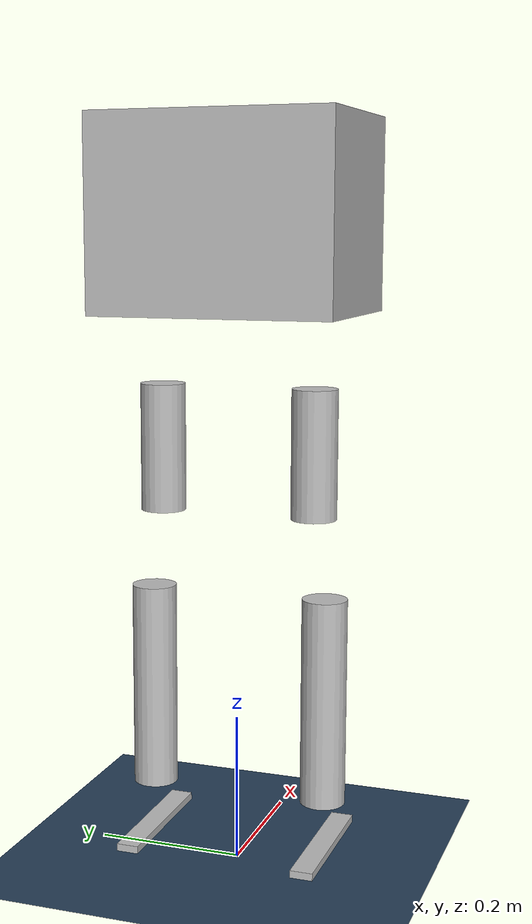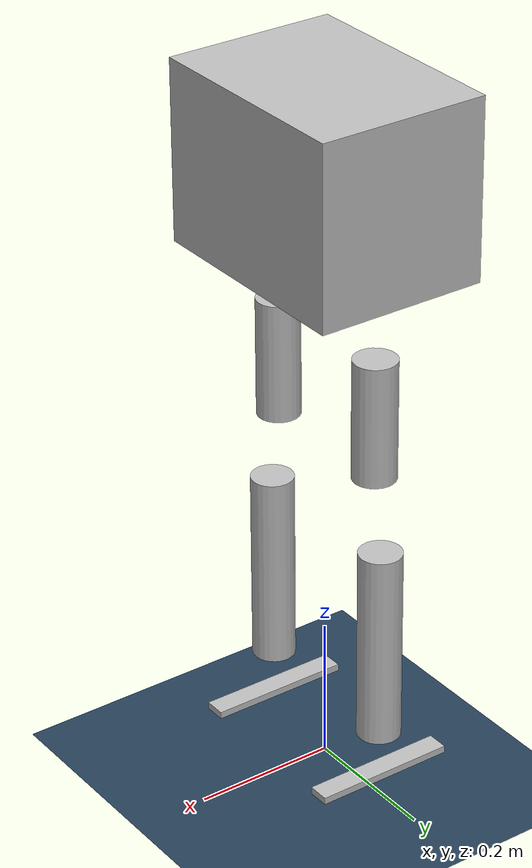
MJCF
<mujoco model="mini_owheel_learning">
  <compiler angle="radian" autolimits="true" />

  <asset>
    <!--设置地板-->
    <texture name="grid" type="2d" builtin="checker" width="512" height="512" rgb1=".1 .2 .3"
      rgb2=".2 .3 .4" />
    <material name="grid" texture="grid" texrepeat="1 1" texuniform="true" reflectance=".2" />
  </asset>

  <option timestep="0.005" integrator="RK4">
    <flag sensornoise="enable" />
  </option>

  <visual>
    <map force="0.1" zfar="30" />
    <rgba haze="0.15 0.25 0.35 1" />
    <global offwidth="2560" offheight="1440" elevation="-20" azimuth="120" />
  </visual>

  <statistic meansize="0.166499" extent="1.17243" center="0 0.000784361 -0.300364" />
  <worldbody>
    <!--主光源（头顶）-->
    <light name="main_light" diffuse="2 2 2" specular="0.5 0.5 0.5" pos="0 0 40" dir="0 0 -1"
      castshadow="true" />
    <!--辅助光源,四面八方-->
    <light name="aux_light1" diffuse=".8 .8 .8" pos=" 10 0 1" dir="-1 0 0" castshadow="false" />
    <light name="aux_light2" diffuse=".8 .8 .8" pos="-10 0 1" dir=" 1 0 0" castshadow="false" />
    <light name="aux_light3" diffuse=".8 .8 .8" pos="0  10 1" dir="0 -1 0" castshadow="false" />
    <light name="aux_light4" diffuse=".8 .8 .8" pos="0 -10 1" dir="0  1 0" castshadow="false" />
    <!--地板-->
    <geom name="floor" type="plane" size="0 0 0.05" material="grid" />
    <body name="torso" pos="0 0 0.82" euler="0 0 3.14">
      <inertial pos="0.01278331 -0.00050323 0.04958380" mass="14.481360"
        fullinertia="0.172446 0.146211 0.128072 -0.000378 0.030596 0.001862" />
      <freejoint name="torso" />
      <geom size="0.12 0.16 0.125" pos="0 0 0.05" type="box" rgba="0.752941 0.752941 0.752941 1" />
      <!--增加IMU所在位置-->
      <site name="imu_site" pos="0 0 0" size="0.02" rgba="1 0 0 1" type="sphere" />
      <body name="lhip" pos="-0.0694983 0.0850001 -0.103336">
        <inertial pos="0.069765 -0.005664 -4e-05" quat="0.506314 0.486654 0.492399 0.514157"
          mass="1.41138" diaginertia="0.000793082 0.00068858 0.000350338" />
        <joint name="lhiproll" pos="0 0 0" axis="1 0 0" range="-0.5 0.5" />
        <body name="lfem" pos="0.0705 0.019725 0">
          <inertial pos="2.9e-05 0.039864 -0.053092" quat="0.997185 0.0702586 -0.00189156 0.0261344"
            mass="1.94987" diaginertia="0.0193461 0.0193218 0.000969153" />
          <joint name="lfempitch" pos="0 0 0" axis="0 -1 0" range="-1.05 1.05" />
          <geom size="0.03 0.085" pos="0 0 -0.15" type="cylinder"
            rgba="0.752941 0.752941 0.752941 1" />
          <body name="ltib" pos="0 0.0162685 -0.3">
            <inertial pos="0.000378 0.004765 -0.218009" quat="0.666459 -0.0145818 0.0101508 0.74533"
              mass="1.48393" diaginertia="0.0148939 0.0148302 0.000594952" />
            <joint name="ltibpitch" pos="0 0 0" axis="0 -1 0" range="-1.57 0" />
            <geom size="0.03 0.14" pos="0 0 -0.18" type="cylinder"
              rgba="0.752941 0.752941 0.752941 1" />
            <body name="lfoot" pos="0 0.03115 -0.3">
              <inertial pos="-0.00017 -0.022829 -0.054307"
                quat="0.437705 0.555194 0.436653 0.556335" mass="0.393722"
                diaginertia="0.0012156 0.000988402 0.000539998" />
              <joint name="lfootrot" pos="0 0 0" axis="0 1 0" range="-1.57 1.57" />
              <geom size="0.1 0.015 0.005" pos="0 -0.03 -0.082" type="box"
                rgba="0.752941 0.752941 0.752941 1" />
            </body>
          </body>
        </body>
      </body>
      <body name="rhip" pos="-0.0694983 -0.0849999 -0.103336">
        <inertial pos="0.069787 0.005664 -2e-06" quat="0.492399 0.514157 0.506314 0.486654"
          mass="1.41138" diaginertia="0.000793082 0.00068858 0.000350338" />
        <joint name="rhiproll" pos="0 0 0" axis="1 0 0" range="-0.5 0.5" />
        <body name="rfem" pos="0.0705 -0.019725 0">
          <inertial pos="0 -0.039784 -0.053142" quat="0.997491 -0.0707435 -0.000207624 -0.00254665"
            mass="1.94987" diaginertia="0.019343 0.0193154 0.000971618" />
          <joint name="rfempitch" pos="0 0 0" axis="0 -1 0" range="-1.05 1.05" />
          <geom size="0.03 0.085" pos="0 0 -0.15" type="cylinder"
            rgba="0.752941 0.752941 0.752941 1" />
          <body name="rtib" pos="0 -0.0147 -0.3">
            <inertial pos="0.000328 -0.004765 -0.218009"
              quat="0.746449 0.0100612 -0.0147449 0.665203" mass="1.48393"
              diaginertia="0.014894 0.0148302 0.000594782" />
            <joint name="rtibpitch" pos="0 0 0" axis="0 -1 0" range="-1.57 0" />
            <geom size="0.03 0.14" pos="0 0 -0.18" type="cylinder"
              rgba="0.752941 0.752941 0.752941 1" />
            <body name="rfoot" pos="0 -0.03115 -0.3">
              <inertial pos="4.8e-05 0.022829 -0.054307" quat="0.553748 0.439757 0.557769 0.434593"
                mass="0.393722" diaginertia="0.0012156 0.000988438 0.000542962" />
              <joint name="rfootrot" pos="0 0 0" axis="0 1 0" range="-1.57 1.57" />
              <geom size="0.1 0.015 0.005" pos="0 0.03 -0.082" type="box"
                rgba="0.752941 0.752941 0.752941 1" />
            </body>
          </body>
        </body>
      </body>
    </body>
  </worldbody>

  <actuator>
    <motor name="lhiproll" joint="lhiproll" gear="1" ctrllimited="true" ctrlrange="-100 100" />
    <motor name="lfempitch" joint="lfempitch" gear="1" ctrllimited="true" ctrlrange="-100 100" />
    <motor name="ltibpitch" joint="ltibpitch" gear="1" ctrllimited="true" ctrlrange="-100 100" />
    <motor name="lfootrot" joint="lfootrot" gear="1" ctrllimited="true" ctrlrange="-100 100" />
    <motor name="rhiproll" joint="rhiproll" gear="1" ctrllimited="true" ctrlrange="-100 100" />
    <motor name="rfempitch" joint="rfempitch" gear="1" ctrllimited="true" ctrlrange="-100 100" />
    <motor name="rtibpitch" joint="rtibpitch" gear="1" ctrllimited="true" ctrlrange="-100 100" />
    <motor name="rfootrot" joint="rfootrot" gear="1" ctrllimited="true" ctrlrange="-100 100" />
  </actuator>

  <sensor>
    <!--组合IMU-->
    <accelerometer name="imu_acc" site="imu_site" />
    <gyro name="imu_gyro" site="imu_site" />
    <framepos name="imu_pos" objtype="site" objname="imu_site" />
    <framelinvel name="imu_linvel" objtype="site" objname="imu_site" />
  </sensor>

</mujoco>
